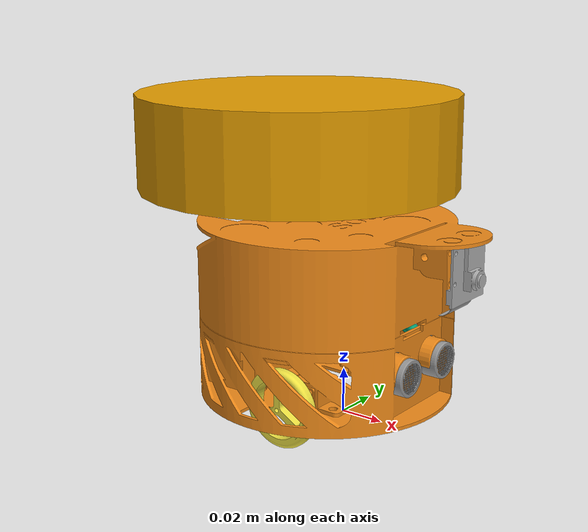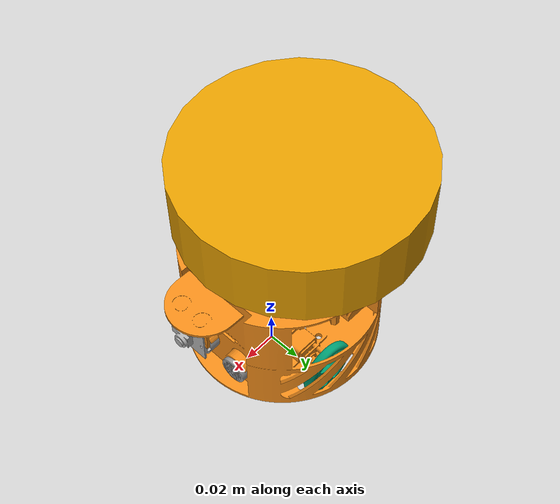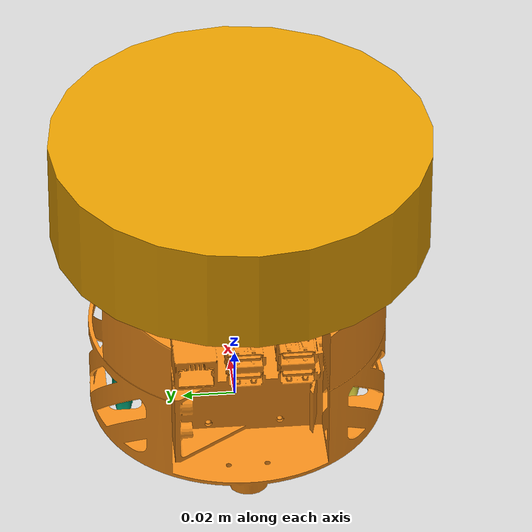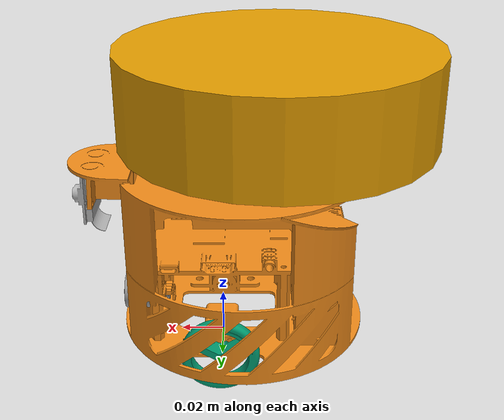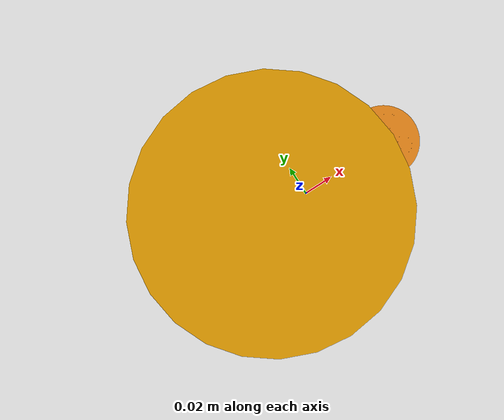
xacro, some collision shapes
<?xml version="1.0" ?>
<robot name="candynamix" xmlns:xacro="http://ros.org/wiki/xacro">
  <xacro:include filename="$(find candynamix_description)/urdf/common_properties.xacro"/>
  <xacro:include filename="$(find candynamix_description)/urdf/candynamix.gazebo.xacro"/>

  <link name="base_footprint"/>

  <joint name="base_joint" type="fixed">
    <parent link="base_footprint"/>
    <child link="base_link"/>
    <origin xyz="0 0 0" rpy="0 0 0"/>
  </joint>

  <link name="base_link">
    <visual>
	<origin xyz="-0.0345 0.112 0.077" rpy="0 0 3.14"/>
      <geometry>
        <mesh filename="package://candynamix_description/meshes/bases/candynamix_base.stl" scale="0.001 0.001 0.001"/>
      </geometry>
      <material name="orange"/>
    </visual>

    <collision>
      <origin xyz="-0.01 0 0.035" rpy="0 0 0"/>
      <geometry>
        <cylinder length="0.05" radius="0.06"/>
      </geometry>
    </collision>

    <inertial>
      <origin xyz="0 0 0" rpy="0 0 0"/>
      <mass value="1"/>
      <inertia ixx="0.05" ixy="0.0" ixz="0.0"
               iyy="0.05" iyz="0.0"
               izz="0.05" />
    </inertial>
  </link>

  <joint name="wheel_left_joint" type="continuous">
    <parent link="base_link"/>
    <child link="wheel_left_link"/>
    <origin xyz="0 0.038 0.016" rpy="${M_PI*0.5} 1.57 1.57"/>
    <axis xyz="0 1 0"/>
  </joint>

  <link name="wheel_left_link">
    <visual>
      <origin xyz="0 0 0" rpy="${-M_PI*0.5} 0 0"/>
      <geometry>
        <mesh filename="package://candynamix_description/meshes/wheels/left_tire.stl" scale="0.001 0.001 0.001"/>
      </geometry>
      <material name="dark"/>
    </visual>

    <collision>
      <origin xyz="0 0.005 0" rpy="${-M_PI*0.5} 0 0"/>
      <geometry>
        <cylinder length="0.005" radius="0.018"/>
      </geometry>
    </collision>

    <inertial>
      <origin xyz="0 0 0" />
      <mass value="0.01" />
      <inertia ixx="0.05" ixy="0.0" ixz="0.0"
               iyy="0.05" iyz="0.0"
               izz="0.05" />
    </inertial>
  </link>

  <joint name="wheel_right_joint" type="continuous">
    <parent link="base_link"/>
    <child link="wheel_right_link"/>
    <origin xyz="0 -0.038 0.016" rpy="${-M_PI*0.5} -1.57 1.57"/>
    <axis xyz="0 1 0"/>
  </joint>

  <link name="wheel_right_link">
    <visual>
      <origin xyz="0 0 0" rpy="${M_PI*0.5} 0 0"/>
      <geometry>
        <mesh filename="package://candynamix_description/meshes/wheels/right_tire.stl" scale="0.001 0.001 0.001"/>
      </geometry>
      <material name="dark"/>
    </visual>

    <collision>
      <origin xyz="0 -0.005 0" rpy="${M_PI*0.5} 0 0"/>
      <geometry>
        <cylinder length="0.005" radius="0.018"/>
      </geometry>
    </collision>

    <inertial>
      <origin xyz="0 0 0" />
      <mass value="0.01" />
      <inertia ixx="0.05" ixy="0.0" ixz="0.0"
               iyy="0.05" iyz="0.0"
               izz="0.05" />
    </inertial>
  </link>

  <joint name="caster_back_joint" type="fixed">
    <parent link="base_link"/>
    <child link="caster_back_link"/>
    <origin xyz="-0.056 0 0.002" rpy="${-M_PI*0.5} 0 0"/>
  </joint>

  <link name="caster_back_link">
    <collision>
      <origin xyz="0 0 0" rpy="${M_PI*0.5} 0 0"/>
      <geometry>
        <cylinder length="0.005" radius="0.01"/>
      </geometry>
    </collision>

    <inertial>
      <origin xyz="0 0 0" />
      <mass value="0.1" />
      <inertia ixx="0.05" ixy="0.0" ixz="0.0"
               iyy="0.05" iyz="0.0"
               izz="0.05" />
    </inertial>
  </link>

  <joint name="imu_joint" type="fixed">
    <parent link="base_link"/>
    <child link="imu_link"/>
    <origin xyz="-0.032 0 0.068" rpy="0 0 0"/>
  </joint>

  <link name="imu_link"/>

  <joint name="scan_joint" type="fixed">
    <parent link="base_link"/>
    <child link="base_scan"/>
    <origin xyz="0.03 0 0.03" rpy="${M_PI*0.5} 0 0 "/>
  </joint>

  <link name="base_scan" type="fixed">

    <visual>
      <origin xyz="0 0 0" rpy="0 ${M_PI*0.5} 0 "/>
      <geometry>
        <mesh filename="package://candynamix_description/meshes/sensors/HC-SR04-UltrasonicSensor.stl" scale="0.001 0.001 0.001"/>
      </geometry>
      <material name="dark"/>
    </visual>

    <collision>
      <origin xyz="0 0 0" rpy="5 10 60"/>
      <geometry>
        <cylinder length="0.003" radius="0.003"/>
      </geometry>
    </collision>

    <inertial>
      <mass value="0.01" />
      <origin xyz="0 0 0" />
      <inertia ixx="0.05" ixy="0.0" ixz="0.0"
               iyy="0.05" iyz="0.0"
               izz="0.05" />
    </inertial>

  </link>

  <joint name="camera_joint" type="fixed">
    <origin xyz="0.0605 -0.00 0.075" rpy="0 0 0"/>
    <parent link="base_link"/>
    <child link="camera_link"/>
  </joint>

  <link name="camera_link">
    <visual>
     <origin xyz="0 0 0" rpy="${M_PI*0.5} 0 ${M_PI*0.5}"/>
      <geometry>
       <mesh filename="package://candynamix_description/meshes/sensors/picamera.stl" scale="0.001 0.001 0.001" />
      </geometry>
      <material name="dark"/>
    </visual>
    <collision>
      <origin xyz="0.003 0.065 0.010" rpy="0 0 0"/>
      <geometry>
        <box size="0.008 0.130 0.022"/>
      </geometry>
    </collision>

    <!-- This inertial field needs doesn't contain reliable data!! -->
  </link>

  <joint name="laser_joint" type="fixed">
    <parent link="base_link"/>
    <child link="laser_scan"/>
    <origin xyz=" -0.025 0 0.120" rpy="0 0 0"/>
  </joint>

  <link name="laser_scan">
    <visual>
      <origin xyz="0 0 0.0" rpy="0 0 0"/>
      <geometry>
        <mesh filename="package://candynamix_description/meshes/sensors/lds.stl" scale="0.001 0.001 0.001"/>
      </geometry>
      <material name="dark"/>
    </visual>

    <collision>
      <origin xyz="0 0 0" rpy="0 0 0"/>
      <geometry>
        <cylinder length="0.0408" radius="0.070"/>
      </geometry>
    </collision>

    <inertial>
      <mass value="0.01" />
      <origin xyz="0 0 0" />
      <inertia ixx="0.001" ixy="0.0" ixz="0.0"
               iyy="0.001" iyz="0.0"
               izz="0.001" />
    </inertial>
  </link>

</robot>
